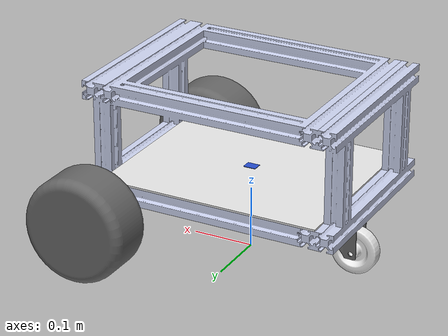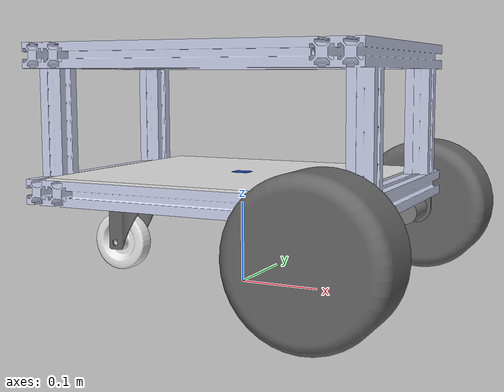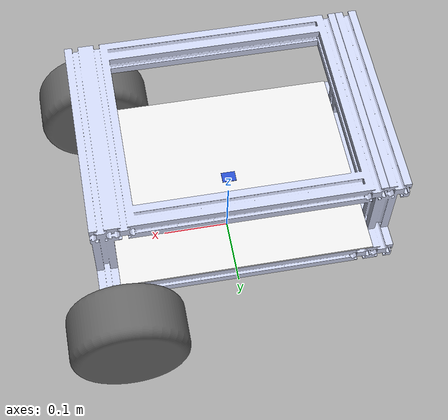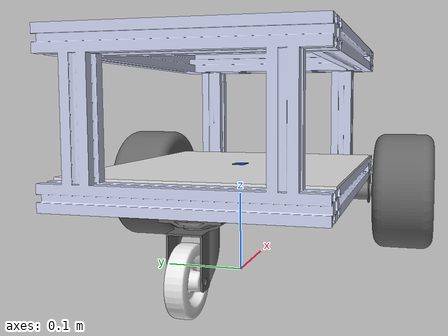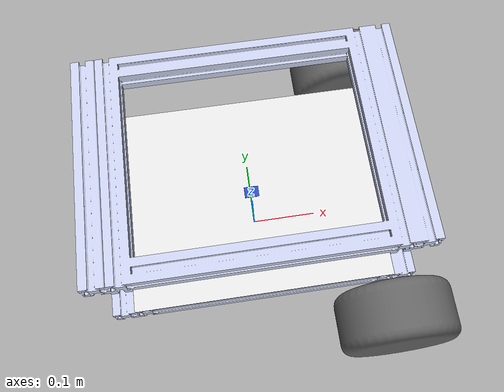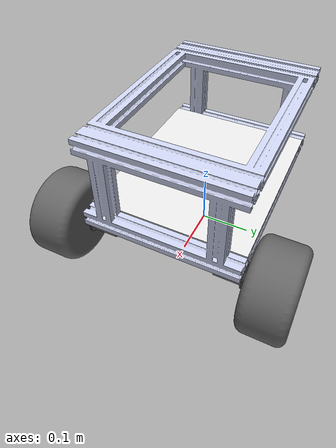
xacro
<?xml version="1.0"?>
<robot xmlns:xacro="http://www.ros.org/wiki/xacro" name="mscbot">
    <!-- insert the gazebo properties and control -->
    <xacro:include filename="mscbot.xacro"/>
    <xacro:include filename="components/mscbot_gazebo.xacro"/>
    <xacro:include filename="components/mscbot_ros2_control.xacro"/>
    <xacro:include filename="components/mpu6050.xacro"/>

    <!-- Base link -->
    <link name="base_link" />

    <link name="orientation_link" >
        <inertial>
            <mass value="400.0"/>
            <origin xyz="0 0 0"/>
            <inertia ixx="0.0001" ixy="0.0" ixz="0.0" iyy="0.0001" iyz="0.0" izz="0.0001"/>
          </inertial>
    </link>
    <joint name="orientation_joint" type="fixed">
        <parent link="base_link"/>
        <child link="orientation_link"/>
        <origin xyz="0 0 105.0e-3" rpy="0 0 0"/>
    </joint>

    <!-- inserting motors and wheels -->
    <xacro:mscbot_motor prefix="right" reflex="-1"/>
    <xacro:mscbot_motor prefix="left" reflex="1"/>
    <xacro:mscbot_wheel prefix="right" reflex="-1"/>
    <xacro:mscbot_wheel prefix="left" reflex="1"/>

    <xacro:caster_wheel/>

</robot>

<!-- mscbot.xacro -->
<robot xmlns:xacro="http://ros.org/wiki/xacro" name="mscbot">

    <!-- Chassis -->
    <link name="chassis_link">
        <visual>
            <geometry>
                <mesh filename="package://mscbot_description/meshes/visual/chassis.dae" />
            </geometry>
        </visual>
        <collision>
            <geometry>
                <mesh filename="package://mscbot_description/meshes/collision/chassis.stl" />
            </geometry>
        </collision>
        <!-- Inertias Kg/m3 -->
        <inertial>
            <mass value="4.13021192"/>
            <origin xyz="-0.14099e-3 0 94.91001e-3" />
            <inertia ixx="70012.84471e-3" ixy="0.06953e-3" ixz="0.37332e-3" iyy="131739.087e-3" iyz="-0.16046e-3" izz="153459.67507e-3"/>
        </inertial>
    </link>

    <joint name="base_to_chassis_joint" type="fixed">
        <parent link="orientation_link"/>
        <child link="chassis_link"/>
        <origin xyz="0 0 0" rpy="0 0 0"/>
    </joint>

    <!-- Mounting Plate  -->
    <link name="mounting_plate_link">
        <visual>
            <geometry>
                <mesh filename="package://mscbot_description/meshes/visual/mounting_plate.dae" />
            </geometry>
        </visual>
        <collision>
            <geometry>
                <mesh filename="package://mscbot_description/meshes/collision/mounting_plate.stl" />
            </geometry>
        </collision>
        <inertial>
            <mass value="0.405"/>
            <origin xyz="0 0 31.5e-3" />
            <inertia ixx="3037.80375e-3" ixy="0" ixz="0" iyy="4374.30375e-3" iyz="0" izz="7411.5e-3"/>
        </inertial>
    </link>
    <joint name="chassis_to_mounting_plate_joint" type="fixed">
        <parent link="chassis_link"/>
        <child link="mounting_plate_link"/>
        <origin xyz="0 0 33.0e-3" rpy="0 0 0"/>
    </joint>

    <!-- Motors -->
    <xacro:macro name="mscbot_motor" params="prefix reflex">
        <xacro:property name="yaw" value="0"/>
        <xacro:if value="${reflex == -1}">
            <xacro:property name="yaw" value="${pi}"/>
        </xacro:if>
        <link name="${prefix}_motor_link">
            <visual>
                <geometry>
                    <mesh filename="package://mscbot_description/meshes/visual/motor.dae" />
                </geometry>
            </visual>
            <collision>
                <geometry>
                    <mesh filename="package://mscbot_description/meshes/collision/motor.stl" />
                </geometry>
            </collision>
            <inertial>
                <mass value="0.35346185"/>
                <origin xyz="180.0e-3 ${reflex*(128.5e-3)} -20.0e-3" rpy="0 0 ${yaw}"/>
                <inertia ixx="52.02349e-3" ixy="0.0" ixz="1.22752e-3" iyy="126.04524e-3" iyz="0.0" izz="120.03932e-3"/>
            </inertial>
        </link>

        <joint name="chassis_to_${prefix}_motor_joint" type="fixed">
            <parent link="chassis_link"/>
            <child link="${prefix}_motor_link"/>
            <origin xyz="180.0e-3 ${reflex*(128.5e-3)} -20.0e-3" rpy="0 0 ${yaw}"/>
        </joint>
    </xacro:macro>

    <!-- Wheels -->
    <xacro:macro name="mscbot_wheel" params="prefix reflex">
        <xacro:property name="yaw" value="0"/>
        <xacro:if value="${reflex == -1}">
            <xacro:property name="yaw" value="${pi}"/>
        </xacro:if>
        <link name="${prefix}_wheel_link">
            <visual>
                <geometry>
                    <mesh filename="package://mscbot_description/meshes/visual/wheel.dae" />
                </geometry>
            </visual>
            <collision>
                <geometry>
                    <mesh filename="package://mscbot_description/meshes/collision/wheel.stl" />
                </geometry>
            </collision>
            <inertial>
                <mass value="0.35"/>
                <origin xyz="180.0e-3 ${reflex*(201.5e-3)} -20.0e-3"/>
                <inertia ixx="820.10526e-3" ixy="0.0" ixz="0.0" iyy="1235.98603e-3" iyz="0.0" izz="820.10526e-3"/>
            </inertial>
        </link>

        <joint name="wheel_${prefix}_joint" type="continuous">
            <parent link="chassis_link"/>
            <child link="${prefix}_wheel_link"/>
            <origin xyz="180.0e-3 ${reflex*(201.5e-3)} -20.0e-3" rpy="0 0 0"/>
            <axis xyz="0 1 0" />
        </joint>
    </xacro:macro>

    <!-- Caster Wheel -->
    <xacro:macro name="caster_wheel" params="">
        <!-- dummy link -->
        <link name="caster_wheel_base" />
        <joint name="chassis_to_caster_wheel_base_joint" type="fixed">
            <parent link="chassis_link"/>
            <child link="caster_wheel_base"/>
            <origin xyz="0 0 0" rpy="0 0 0"/>
        </joint>

        <!-- Top plate -->
        <link name="caster_wheel_top_plate_link">
            <visual>
                <geometry>
                    <mesh filename="package://mscbot_description/meshes/visual/caster_wheel_top_plate.dae" />
                </geometry>
            </visual>
            <collision>
                <geometry>
                    <mesh filename="package://mscbot_description/meshes/collision/caster_wheel_top_plate.stl" />
                </geometry>
            </collision>
            <inertial>
                <mass value="0.14418457"/>
                <origin xyz="-143.57354e-3 0 -6.702e-3"/>
                <inertia ixx="57.06399e-3" ixy="-2.313e-9" ixz="-0.81573e-3" iyy="48.26497e-3" iyz="-7.840e-10" izz="100.03429e-3"/>
            </inertial>
        </link>

        <joint name="caster_base_to_wheel_top_plate_joint" type="fixed">
            <parent link="caster_wheel_base"/>
            <child link="caster_wheel_top_plate_link"/>
            <origin xyz="-143.158e-3 0 1.0e-3" rpy="0 0 0"/>
        </joint>

        <!-- Upper part -->
        <link name="caster_wheel_upper_part_link">
            <visual>
                <geometry>
                    <mesh filename="package://mscbot_description/meshes/visual/caster_wheel_upper_part.dae" />
                </geometry>
            </visual>
            <collision>
                <geometry>
                    <mesh filename="package://mscbot_description/meshes/collision/caster_wheel_upper_part.stl" />
                </geometry>
            </collision>
            <inertial>
                <mass value="0.13558318"/>
                <origin xyz="-164.31023e-3 -0.01827e-3 -34.40848e-3"/>
                <inertia ixx="74.72273e-3" ixy="-0.01349e-3" ixz="-14.16164e-3" iyy="67.02204e-3" iyz="-0.03125e-3" izz="66.67706e-3"/>
            </inertial>
        </link>

        <joint name="chassis_to_caster_wheel_upper_part_joint" type="continuous">
            <parent link="caster_wheel_top_plate_link"/>
            <child link="caster_wheel_upper_part_link"/>
            <origin xyz="-10.0e-3 0 -17.13636e-3" rpy="0 0 0"/>
            <axis xyz="0 0 1" />
        </joint>

        <!-- Caster Wheel -->
        <link name="caster_wheel_link">
            <visual>
                <geometry>
                    <mesh filename="package://mscbot_description/meshes/visual/caster_wheel.dae" />
                </geometry>
            </visual>
            <collision>
                <geometry>
                    <mesh filename="package://mscbot_description/meshes/collision/caster_wheel.stl" />
                </geometry>
            </collision>
            <inertial>
                <mass value="0.131"/>
                <origin xyz="-179.458e-3 0 -68.5e-3" />
                <inertia ixx="57.77833e-3" ixy="0.0" ixz="0.0" iyy="106.3445e-3" iyz="0.0" izz="57.77833e-3"/>
            </inertial>
        </link>

        <joint name="chassis_to_caster_wheel_joint" type="continuous">
            <parent link="caster_wheel_upper_part_link"/>
            <child link="caster_wheel_link"/>
            <origin xyz="-26.3e-3 0 -51.36364e-3" rpy="0 0 0"/>
            <axis xyz="0 1 0" />
        </joint>

    </xacro:macro>
</robot>

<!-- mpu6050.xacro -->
<robot xmlns:xacro="http://www.ros.org/wiki/xacro" name="mpu6050">
    <link name="mpu6050_imu_link">
        <visual>
            <geometry>
                <box size="20.5e-3 16.0e-3 1.5e-3"/>
            </geometry>
        </visual>
        <collision>
            <geometry>
                <box size="20.5e-3 16.0e-3 1.5e-3"/>
            </geometry>
        </collision>
        <inertial>
            <mass value="0.01"/>
            <origin xyz="-0.01963e-3 -0.03606e-3 33.848e-3" />
            <inertia ixx="0.19373e-3" ixy="0.00168e-3" ixz="0.00017e-3" iyy="0.33026e-3" iyz="3.932e-8" izz="0.52025e-3"/>
        </inertial>
    </link>

    <joint name="mounting_plate_to_imu" type="fixed">
        <origin xyz="0 0 0.1e-3" rpy="0 0 0" />
        <parent link="mounting_plate_link"/>
        <child link="mpu6050_imu_link"/>
    </joint>

    <!-- insert gazebo -->
    <gazebo reference="mpu6050_imu_link">
        <material>Gazebo/Blue</material>
        <gravity>true</gravity>
        <sensor name="imu" type="imu">
          <always_on>true</always_on>
          <update_rate>100</update_rate>
          <visualize>true</visualize>
          <topic>mpu6050/imu</topic>
          <plugin filename="libgazebo_ros_imu_sensor.so" name="mpu6050_imu">
            <topicName>mpu6050/imu</topicName>
            <bodyName>mpu6050_imu_link</bodyName>
            <updateRateHZ>100.0</updateRateHZ>
            <gaussianNoise>0.0</gaussianNoise>
            <xyzOffset>0 0 0</xyzOffset>
            <rpyOffset>0 0 0</rpyOffset>
            <frameName>mpu6050_imu_link</frameName>
            <initialOrientationAsReference>false</initialOrientationAsReference>
          </plugin>
          <pose>0 0 0 0 0 0</pose>
        </sensor>
    </gazebo>
</robot>
